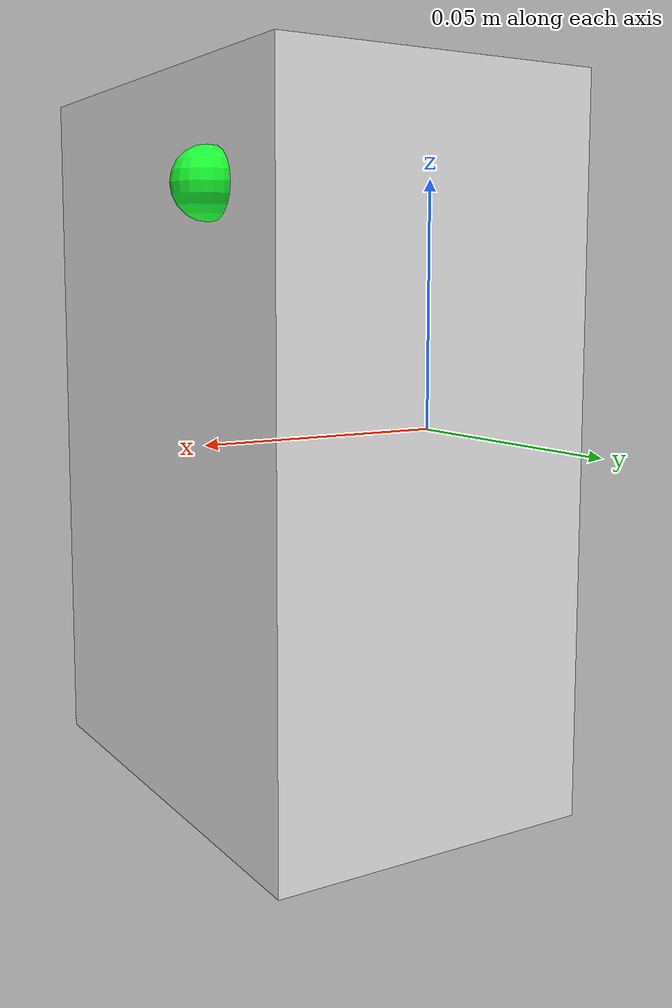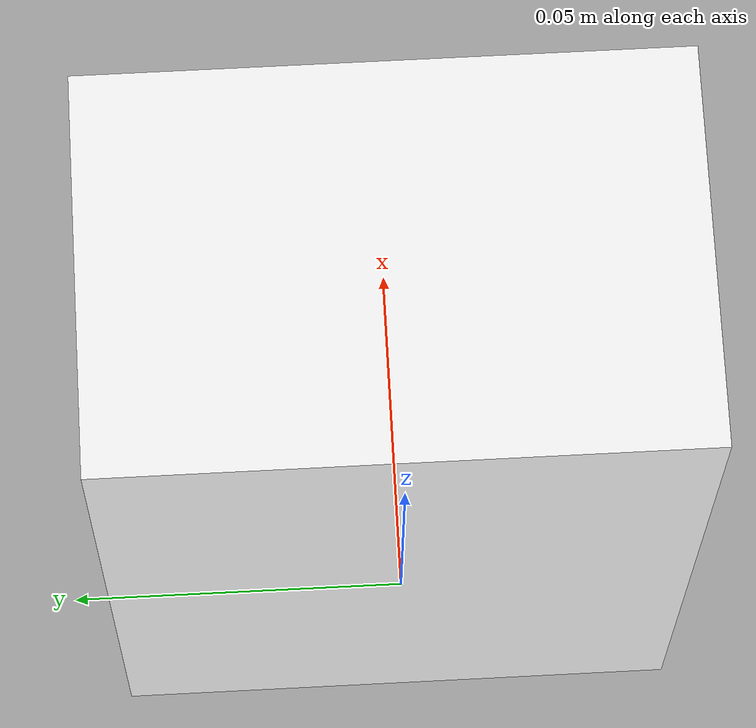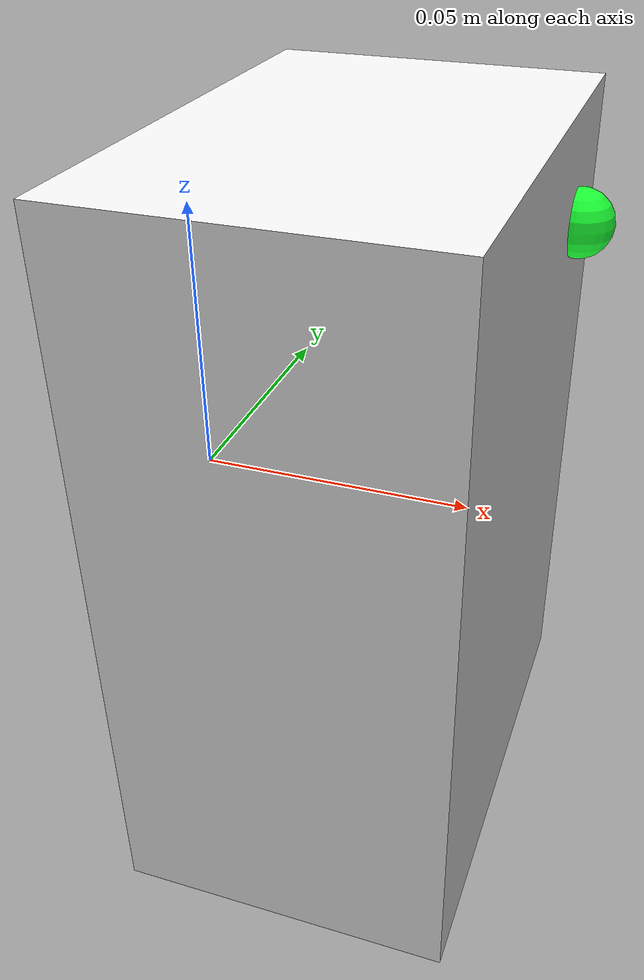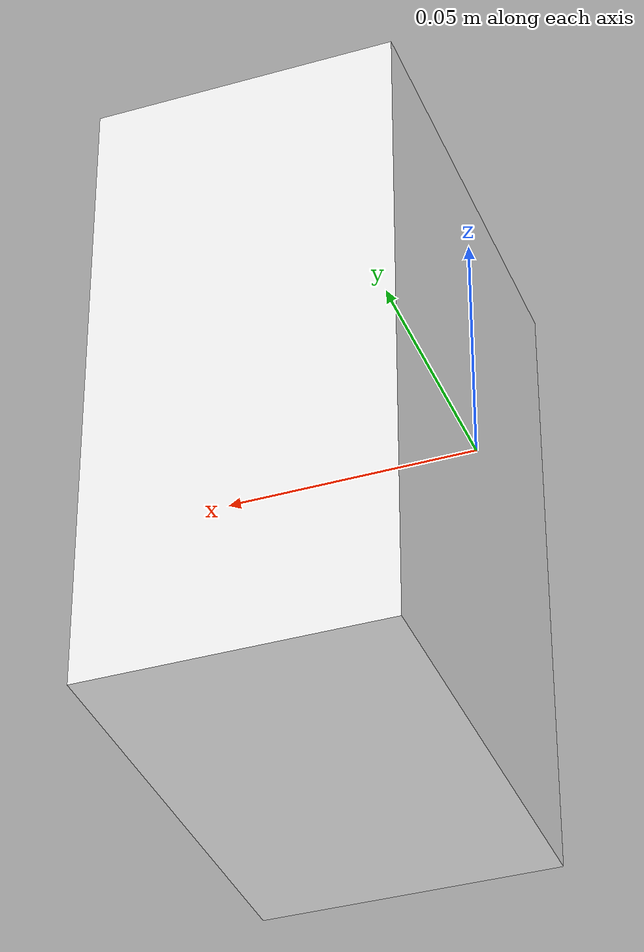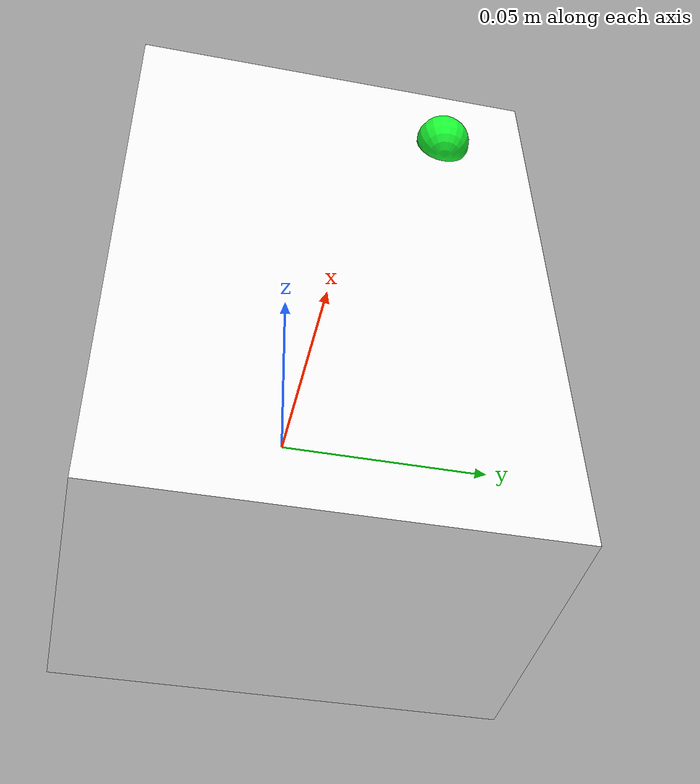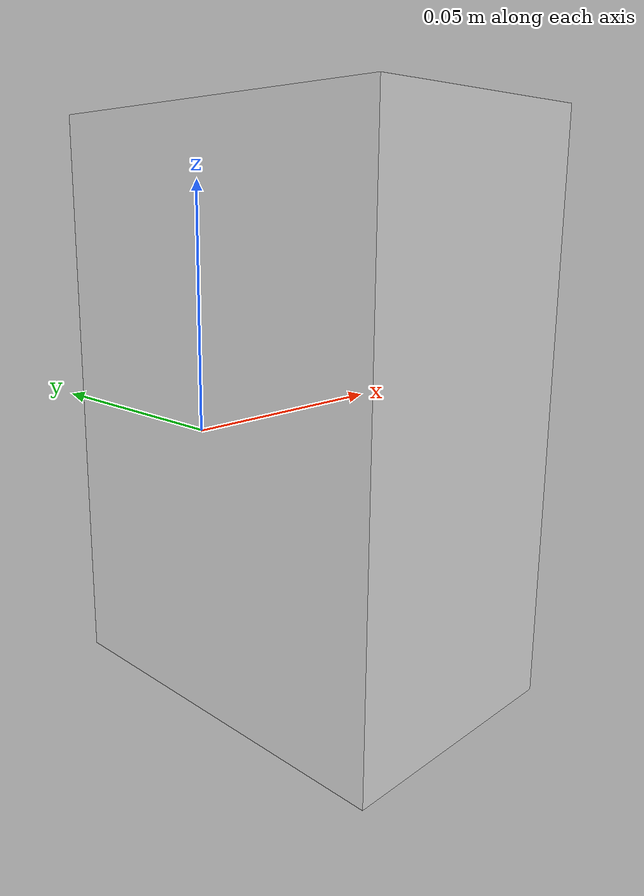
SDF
<?xml version="1.0"?>
<!-- Temperature & humidity sensor enclosure (e.g. DHT22/SHT31 in a vented box).
     Model +x points into the room. -->
<sdf version="1.7">
  <model name="climate_sensor">
    <static>true</static>
    <link name="link">
      <visual name="box">
        <pose>0.03 0 0 0 0 0</pose>
        <geometry><box><size>0.06 0.09 0.13</size></box></geometry>
        <material><ambient>0.9 0.9 0.9 1</ambient><diffuse>0.95 0.95 0.95 1</diffuse></material>
      </visual>
      <visual name="led">
        <pose>0.061 0.025 0.045 0 0 0</pose>
        <geometry><sphere><radius>0.006</radius></sphere></geometry>
        <material><ambient>0.1 0.9 0.2 1</ambient><diffuse>0.1 1.0 0.2 1</diffuse><emissive>0.1 0.8 0.2 1</emissive></material>
      </visual>
      <collision name="collision">
        <pose>0.03 0 0 0 0 0</pose>
        <geometry><box><size>0.06 0.09 0.13</size></box></geometry>
      </collision>
    </link>
  </model>
</sdf>
